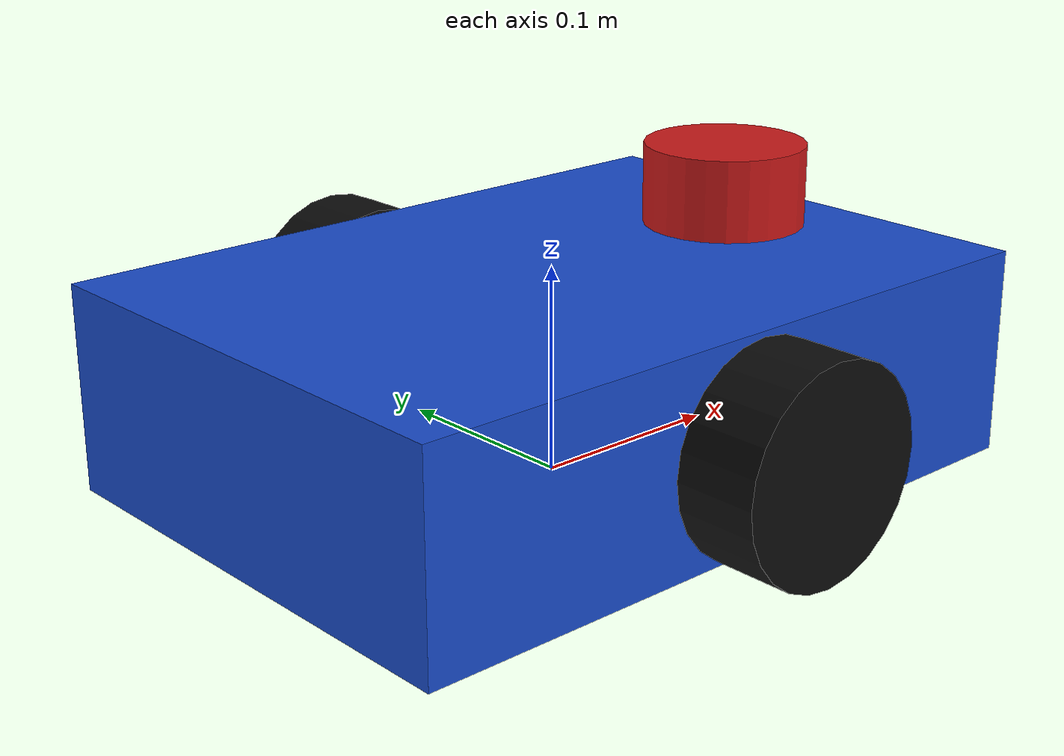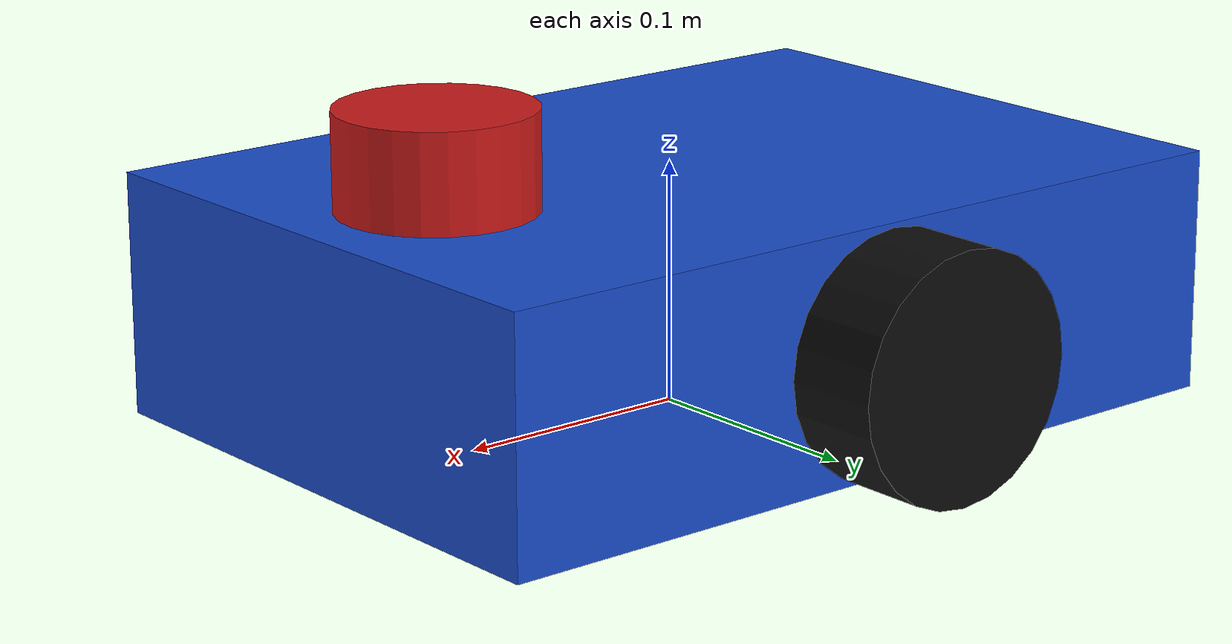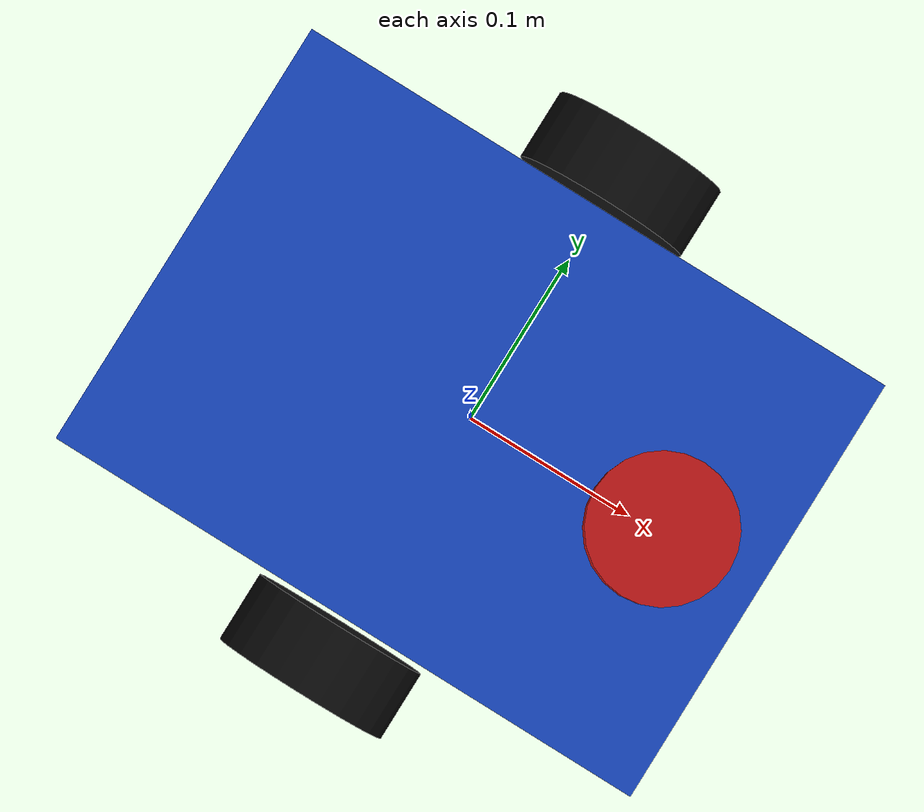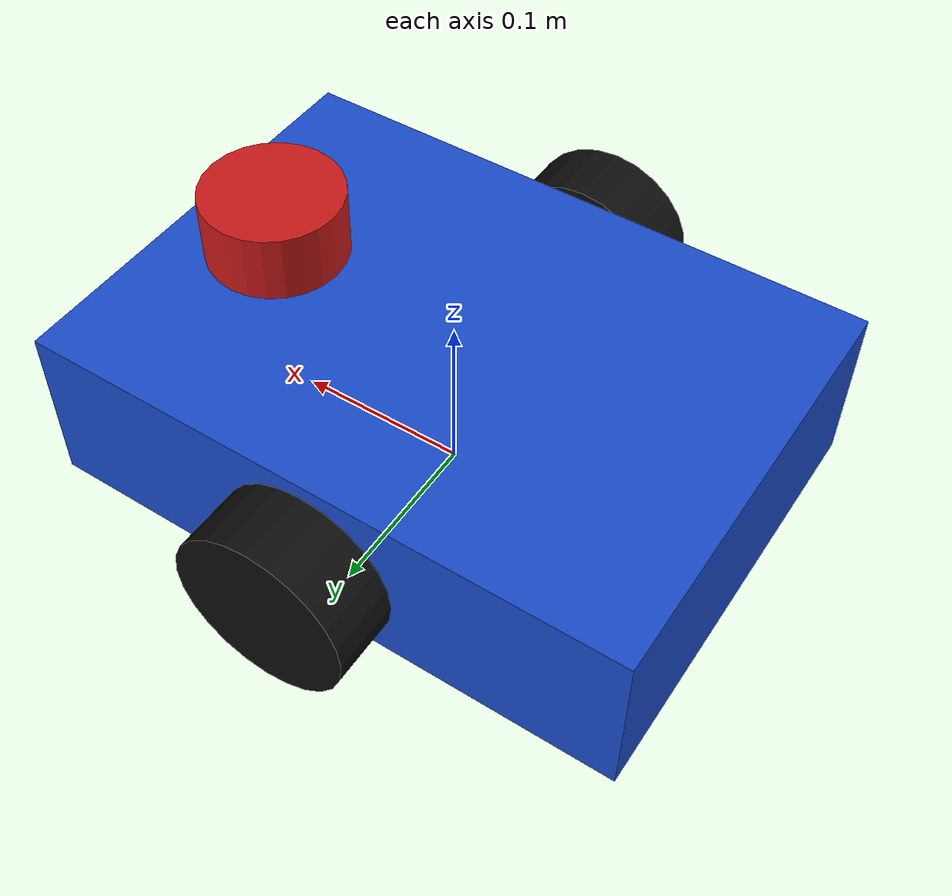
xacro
<?xml version="1.0"?>
<robot xmlns:xacro="http://www.ros.org/wiki/xacro" name="diffbot">

  <!-- ===== dimensions ===== -->
  <xacro:property name="base_len"     value="0.35"/>
  <xacro:property name="base_wid"     value="0.25"/>
  <xacro:property name="base_hgt"     value="0.10"/>
  <xacro:property name="base_mass"    value="5.0"/>
  <xacro:property name="wheel_radius" value="0.05"/>
  <xacro:property name="wheel_width"  value="0.04"/>
  <xacro:property name="wheel_mass"   value="0.5"/>
  <xacro:property name="wheel_sep"    value="0.30"/>
  <xacro:property name="caster_radius" value="0.03"/>

  <!-- ===== inertia macros ===== -->
  <xacro:macro name="box_inertia" params="m x y z">
    <inertial><mass value="${m}"/>
      <inertia ixx="${m*(y*y+z*z)/12}" ixy="0" ixz="0"
               iyy="${m*(x*x+z*z)/12}" iyz="0" izz="${m*(x*x+y*y)/12}"/>
    </inertial>
  </xacro:macro>
  <xacro:macro name="cyl_inertia" params="m r h">
    <inertial><mass value="${m}"/>
      <inertia ixx="${m*(3*r*r+h*h)/12}" ixy="0" ixz="0"
               iyy="${m*(3*r*r+h*h)/12}" iyz="0" izz="${m*r*r/2}"/>
    </inertial>
  </xacro:macro>
  <xacro:macro name="sph_inertia" params="m r">
    <inertial><mass value="${m}"/>
      <inertia ixx="${2*m*r*r/5}" ixy="0" ixz="0"
               iyy="${2*m*r*r/5}" iyz="0" izz="${2*m*r*r/5}"/>
    </inertial>
  </xacro:macro>

  <material name="blue"><color rgba="0.1 0.3 0.8 1"/></material>
  <material name="black"><color rgba="0.05 0.05 0.05 1"/></material>
  <material name="red"><color rgba="0.8 0.1 0.1 1"/></material>

  <!-- ground reference frame -->
  <link name="base_footprint"/>
  <joint name="base_joint" type="fixed">
    <parent link="base_footprint"/><child link="base_link"/>
    <origin xyz="0 0 ${wheel_radius}"/>
  </joint>

  <!-- chassis -->
  <link name="base_link">
    <visual><geometry><box size="${base_len} ${base_wid} ${base_hgt}"/></geometry><material name="blue"/></visual>
    <collision><geometry><box size="${base_len} ${base_wid} ${base_hgt}"/></geometry></collision>
    <xacro:box_inertia m="${base_mass}" x="${base_len}" y="${base_wid}" z="${base_hgt}"/>
  </link>

  <!-- wheel macro (side = +1 left, -1 right) -->
  <xacro:macro name="wheel" params="prefix side">
    <link name="${prefix}_wheel">
      <visual><origin rpy="1.5708 0 0"/><geometry><cylinder radius="${wheel_radius}" length="${wheel_width}"/></geometry><material name="black"/></visual>
      <collision><origin rpy="1.5708 0 0"/><geometry><cylinder radius="${wheel_radius}" length="${wheel_width}"/></geometry></collision>
      <xacro:cyl_inertia m="${wheel_mass}" r="${wheel_radius}" h="${wheel_width}"/>
    </link>
    <joint name="${prefix}_wheel_joint" type="continuous">
      <parent link="base_link"/><child link="${prefix}_wheel"/>
      <origin xyz="0 ${side*wheel_sep/2} 0"/><axis xyz="0 1 0"/>
    </joint>
  </xacro:macro>
  <xacro:wheel prefix="left"  side="1"/>
  <xacro:wheel prefix="right" side="-1"/>

  <!-- caster -->
  <link name="caster">
    <visual><geometry><sphere radius="${caster_radius}"/></geometry><material name="black"/></visual>
    <collision><geometry><sphere radius="${caster_radius}"/></geometry></collision>
    <xacro:sph_inertia m="0.2" r="${caster_radius}"/>
  </link>
  <joint name="caster_joint" type="fixed">
    <parent link="base_link"/><child link="caster"/>
    <origin xyz="${base_len/2 - caster_radius} 0 ${-(wheel_radius - caster_radius)}"/>
  </joint>

  <!-- lidar -->
  <link name="lidar_link">
    <visual><geometry><cylinder radius="0.04" length="0.04"/></geometry><material name="red"/></visual>
    <collision><geometry><cylinder radius="0.04" length="0.04"/></geometry></collision>
    <xacro:cyl_inertia m="0.1" r="0.04" h="0.04"/>
  </link>
  <joint name="lidar_joint" type="fixed">
    <parent link="base_link"/><child link="lidar_link"/>
    <origin xyz="${base_len/2 - 0.06} 0 ${base_hgt/2 + 0.02}"/>
  </joint>

  <!-- ===== Gazebo: friction ===== -->
  <gazebo reference="caster"><mu1>0.0</mu1><mu2>0.0</mu2></gazebo>
  <gazebo reference="left_wheel"><mu1>1.0</mu1><mu2>1.0</mu2></gazebo>
  <gazebo reference="right_wheel"><mu1>1.0</mu1><mu2>1.0</mu2></gazebo>

  <!-- ===== Gazebo: drive + joint states ===== -->
  <gazebo>
    <plugin filename="gz-sim-diff-drive-system" name="gz::sim::systems::DiffDrive">
      <left_joint>left_wheel_joint</left_joint>
      <right_joint>right_wheel_joint</right_joint>
      <wheel_separation>${wheel_sep}</wheel_separation>
      <wheel_radius>${wheel_radius}</wheel_radius>
      <odom_publish_frequency>50</odom_publish_frequency>
      <topic>cmd_vel</topic>
      <odom_topic>odom</odom_topic>
      <tf_topic>tf</tf_topic>
      <frame_id>odom</frame_id>
      <child_frame_id>base_footprint</child_frame_id>
    </plugin>
    <plugin filename="gz-sim-joint-state-publisher-system" name="gz::sim::systems::JointStatePublisher">
      <topic>joint_states</topic>
    </plugin>
  </gazebo>

  <!-- ===== Gazebo: lidar sensor ===== -->
  <gazebo reference="lidar_link">
    <sensor name="lidar" type="gpu_lidar">
      <topic>scan</topic>
      <gz_frame_id>lidar_link</gz_frame_id>
      <update_rate>10</update_rate>
      <always_on>1</always_on>
      <visualize>true</visualize>
      <lidar>
        <scan><horizontal>
          <samples>360</samples><resolution>1</resolution>
          <min_angle>-3.14159</min_angle><max_angle>3.14159</max_angle>
        </horizontal></scan>
        <range><min>0.12</min><max>10.0</max><resolution>0.01</resolution></range>
      </lidar>
    </sensor>
  </gazebo>

</robot>
